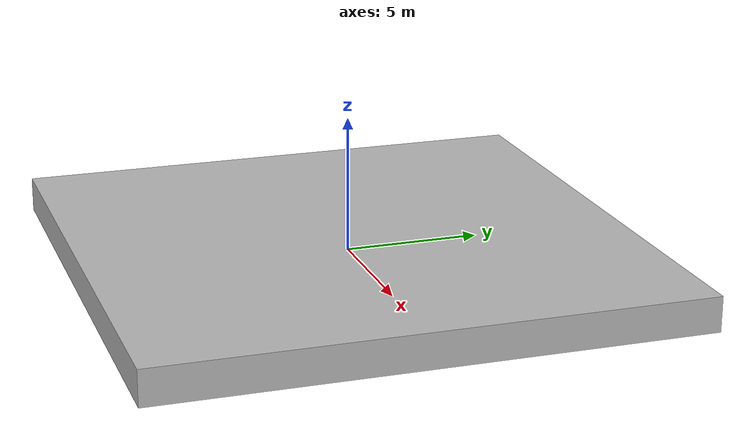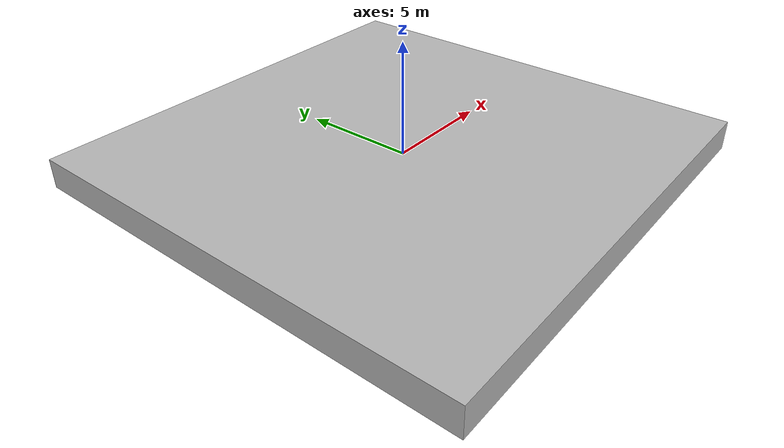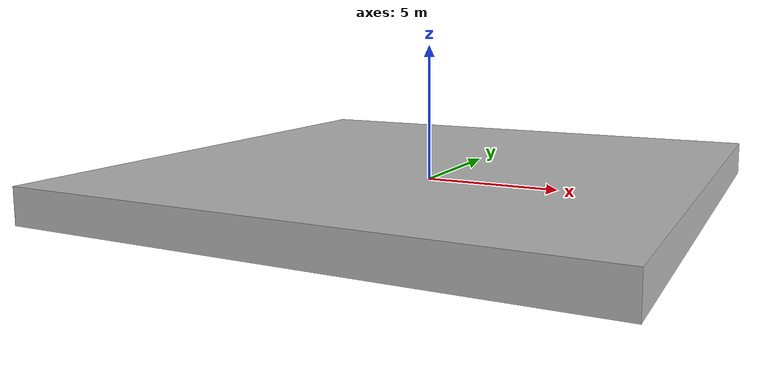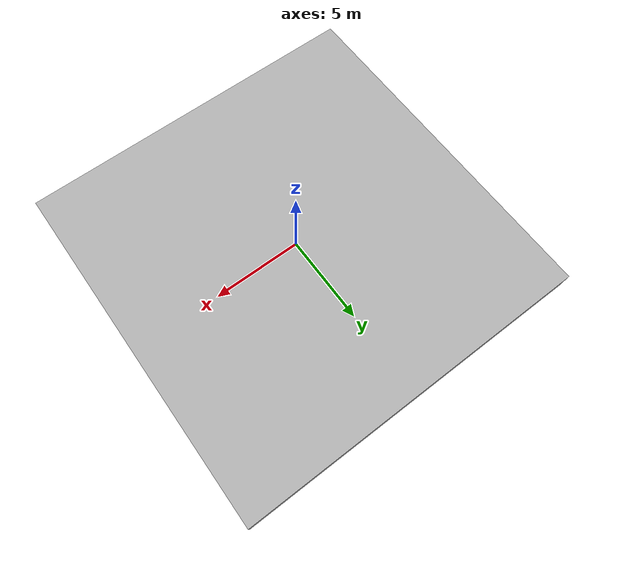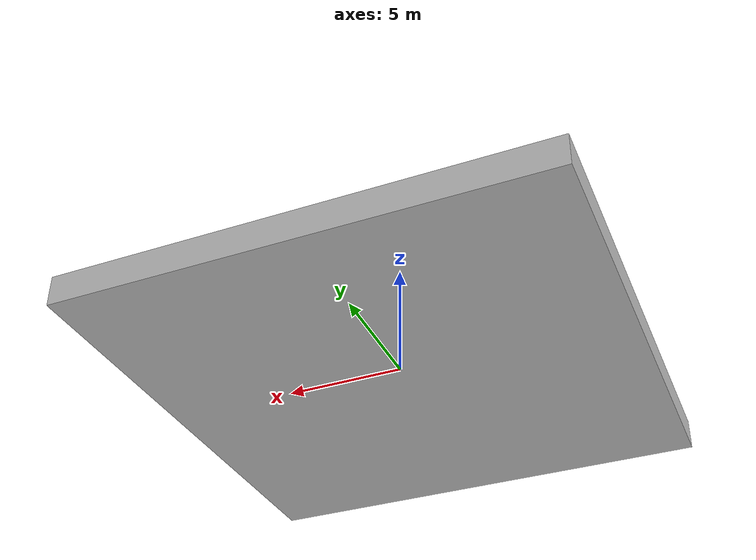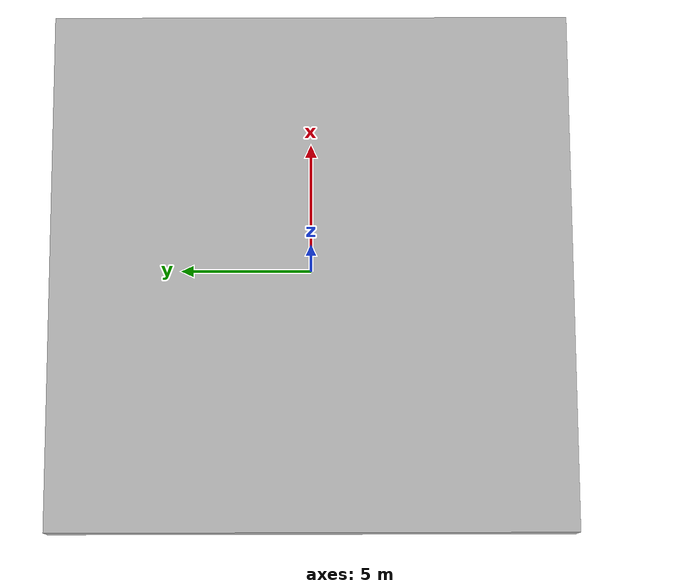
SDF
<?xml version="1.0" ?>
<sdf version="1.5">
  <model name="ground_plane_reduced">
    <static>true</static>
    <link name="link">
      <collision name="collision">
        <geometry>
          <box>
            <size>20 20 .1</size>
          </box>
        </geometry>
      </collision>
      <visual name="visual">
        <cast_shadows>false</cast_shadows>
        <geometry>
          <box>
            <size>20 20 1.3</size>
          </box>
        </geometry>
        <material>
          <script>
            <uri>model://ground_plane/materials/scripts</uri>
            <uri>model://ground_plane/materials/textures</uri>
            <name>vrc/ground</name>
          </script>
        </material>
      </visual>
    </link>
  </model>
</sdf>
